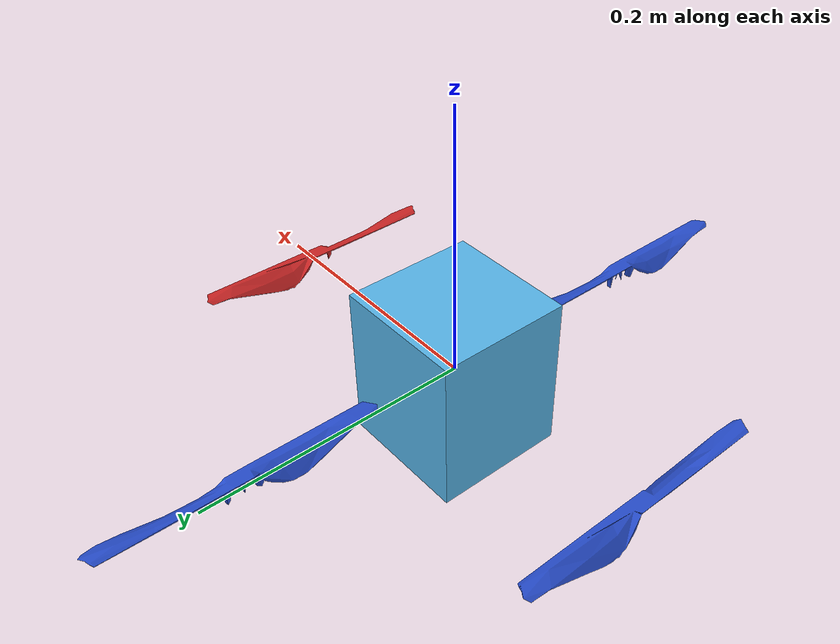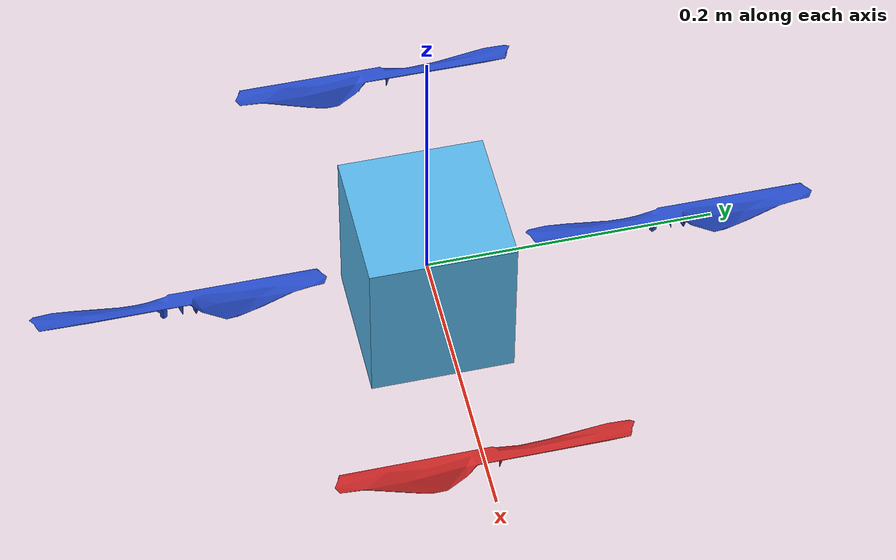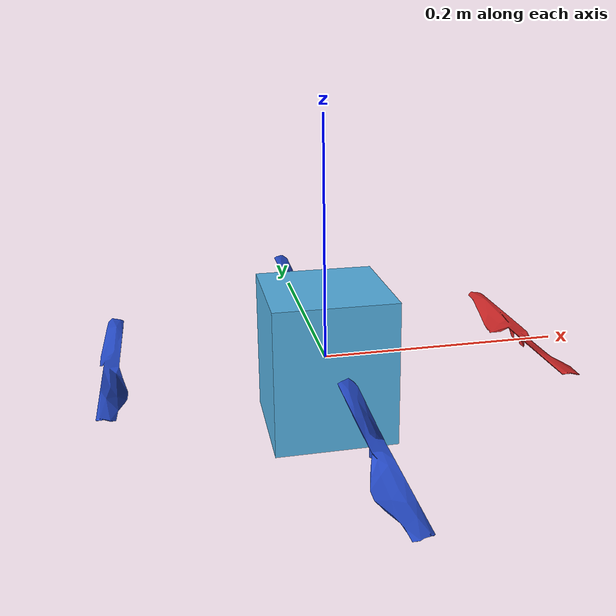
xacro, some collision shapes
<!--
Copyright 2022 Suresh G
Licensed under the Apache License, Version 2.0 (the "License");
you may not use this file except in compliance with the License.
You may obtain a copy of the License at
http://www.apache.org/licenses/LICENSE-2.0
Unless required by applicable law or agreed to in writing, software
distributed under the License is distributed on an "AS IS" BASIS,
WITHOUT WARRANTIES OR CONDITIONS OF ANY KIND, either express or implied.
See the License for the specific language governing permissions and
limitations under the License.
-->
<?xml version="1.0"?>
<?xml-model href="http://download.ros.org/schema/package_format3.xsd" schematypens="http://www.w3.org/2001/XMLSchema"?>
<robot name="hummingbird" xmlns:xacro="http://ros.org/wiki/xacro">
  <!--
    Arguments for the Asctec Hummingbird
  -->
  <xacro:arg name="namespace" default="hummingbird" />

  <!--
    Include the multirotor generic components
  -->
  <xacro:include filename="$(find mav_description)/urdf/mav_generic_components.xacro" />
  <!--
    Include the imu sensor
  -->
  <xacro:include filename="$(find mav_description)/urdf/imu.urdf.xacro" />

  <!--
    Instantiate the hummingbird mechanics
  -->
  <xacro:include filename="$(find mav_description)/urdf/hummingbird_base.urdf.xacro" />
  <!--
    Instantiate the hummingbird controller
  -->
  <xacro:multirotor_controller robot_namespace="$(arg namespace)" />
  <!--
    Instantiate the gt p3d interface
  -->
  <xacro:gt_p3d robot_namespace="$(arg namespace)" />
  <!--
    Instantiate the imu sensor
  -->
  <xacro:imu_sensor robot_namespace="$(arg namespace)" color="Black"
    parent="$(arg namespace)/base_link">
    <origin xyz="0 0 0" rpy="0 0 0" />
  </xacro:imu_sensor>
</robot>

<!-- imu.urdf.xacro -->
<?xml-model href="http://download.ros.org/schema/package_format3.xsd" schematypens="http://www.w3.org/2001/XMLSchema"?>
<robot name="imu" xmlns:xacro="http://ros.org/wiki/xacro">
  <!--
    Properties for the ADIS16448 IMU
  -->
  <xacro:property name="imu_mass" value="0.015" /> <!-- [kg] -->
  <xacro:property name="imu_length" value="0.03" />
  <xacro:property name="imu_width" value="0.03" />
  <xacro:property name="imu_height" value="0.01" />

  <!--
    Property for the imu's inertia
  -->
  <xacro:property name="imu_inertia">
    <inertia ixx="0.00001" ixy="0.0" ixz="0.0"
             iyy="0.00001" iyz="0.0"
             izz="0.00001" /> <!-- [kg m^2] ... -->
  </xacro:property>

  <!--
    Macro for the ADIS16448 IMU body
  -->
  <xacro:macro name="imu_sensor"
    params="robot_namespace parent color *origin">
    <link name="${robot_namespace}/imu_link">
      <inertial>
        <mass value="${imu_mass}" /> <!-- [kg] -->
        <origin xyz="0 0 0" />
        <xacro:insert_block name="imu_inertia" />
      </inertial>

      <visual>
        <origin xyz="0 0 0" rpy="0 0 0" />
        <geometry>
          <box size="${imu_length} ${imu_width} ${imu_height}" />
        </geometry>
      </visual>

      <collision>
        <origin xyz="0 0 0" rpy="0 0 0" />
        <geometry>
          <box size="${imu_length} ${imu_width} ${imu_height}" />
        </geometry>
      </collision>
    </link>

    <joint name="${robot_namespace}/imu_joint" type="fixed">
      <xacro:insert_block name="origin" />
      <parent link="${parent}" />
      <child link="${robot_namespace}/imu_link" />
    </joint>

    <gazebo reference="${robot_namespace}/imu_link">
      <material>Gazebo/${color}</material>
      <sensor name="imu_sensor" type="imu">
        <!-- Ensure sensor is always active -->
        <always_on>true</always_on>

        <!-- Update rate in Hz, defaults to 0.0, which means as fast as possible -->
        <update_rate>100</update_rate>

        <imu>
          <!-- Angular velocity noise model [rad/s] -->
          <angular_velocity>
            <x>
              <noise type="gaussian">
                <mean>0.0</mean>
                <stddev>2.0e-4</stddev>
              </noise>
            </x>
            <y>
              <noise type="gaussian">
                <mean>0.0</mean>
                <stddev>2.0e-4</stddev>
              </noise>
            </y>
            <z>
              <noise type="gaussian">
                <mean>0.0</mean>
                <stddev>2.0e-4</stddev>
              </noise>
            </z>
          </angular_velocity>

          <!-- Linear acceleration noise model [m/s^2] -->
          <linear_acceleration>
            <x>
              <noise type="gaussian">
                <mean>0.0</mean>
                <stddev>1.7e-2</stddev>
              </noise>
            </x>
            <y>
              <noise type="gaussian">
                <mean>0.0</mean>
                <stddev>1.7e-2</stddev>
              </noise>
            </y>
            <z>
              <noise type="gaussian">
                <mean>0.0</mean>
                <stddev>1.7e-2</stddev>
              </noise>
            </z>
          </linear_acceleration>
        </imu>
        <plugin name="${robot_namespace}_imu_sensor"
          filename="libgazebo_ros_imu_sensor.so">
          <ros>
            <!-- Add a namespace -->
            <namespace>${robot_namespace}</namespace>

            <!-- Remap the imu topic -->
            <remapping>~/out:=imu</remapping>
          </ros>

          <!-- To comply with REP 145 (world as orientation reference) -->
          <initial_orientation_as_reference>false</initial_orientation_as_reference>
        </plugin>
      </sensor>
    </gazebo>
  </xacro:macro>
</robot>

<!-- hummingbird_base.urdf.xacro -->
<?xml-model href="http://download.ros.org/schema/package_format3.xsd" schematypens="http://www.w3.org/2001/XMLSchema"?>
<robot name="hummingbird" xmlns:xacro="http://ros.org/wiki/xacro">
  <!--
    Properties for the Asctec Hummingbird
    reference Novel Dynamic Inversion Architectur Design for Quadrocopter Control by Wang et al.
  -->
  <xacro:property name="mav_namespace" value="$(arg namespace)" />
  <xacro:property name="mav_mesh_file" value="file://$(find mav_description)/meshes/hummingbird.dae" />
  <xacro:property name="body_mass" value="0.68" /> <!-- [kg] -->
  <xacro:property name="body_length" value="0.1" />
  <xacro:property name="body_width" value="0.1" />
  <xacro:property name="body_height" value="0.12" />
  <xacro:property name="rotor_mass" value="0.009" /> <!-- [kg] -->
  <xacro:property name="rotor_radius" value="0.1" />
  <xacro:property name="arm_length" value="0.17" />
  <xacro:property name="rotor_z_offset" value="0.01" />

  <!--
    Include the multirotor base xacro
  -->
  <xacro:include filename="$(find mav_description)/urdf/multirotor_base.urdf.xacro" />

  <!--
    Property for the body's inertia
  -->
  <xacro:property name="body_inertia">
    <inertia ixx="0.007" ixy="0.0" ixz="0.0"
             iyy="0.007" iyz="0.0"
             izz="0.012" /> <!-- [kg m^2] ... -->
  </xacro:property>

  <!--
    Property for the single rotor's inertia, assuming a cuboid shape
  -->
  <xacro:property name="rotor_inertia">
    <xacro:box_inertia x="${rotor_radius}" y="0.015" z="0.003"
      mass="${rotor_mass}" />
  </xacro:property>

  <!--
    Instantiate the multirotor_base macro
  -->
  <xacro:multirotor_base robot_namespace="${mav_namespace}" mass="${body_mass}"
    length="${body_length}" width="${body_width}" height="${body_height}"
    mesh_file="${mav_mesh_file}">
    <xacro:insert_block name="body_inertia" />
  </xacro:multirotor_base>

  <!--
    Instantiate the front vertical_rotor macro
  -->
  <xacro:vertical_rotor robot_namespace="${mav_namespace}" suffix="front"
    direction="cw" parent="${mav_namespace}/base_link" mass="${rotor_mass}"
    radius="${rotor_radius}" id="0" color="Red">
    <origin xyz="${arm_length} 0 ${rotor_z_offset}" rpy="0 0 0" />
    <xacro:insert_block name="rotor_inertia" />
  </xacro:vertical_rotor>

  <!--
    Instantiate the left vertical_rotor macro
  -->
  <xacro:vertical_rotor robot_namespace="${mav_namespace}" suffix="left"
    direction="ccw" parent="${mav_namespace}/base_link" mass="${rotor_mass}"
    radius="${rotor_radius}" id="1" color="Blue">
    <origin xyz="0 ${arm_length} ${rotor_z_offset}" rpy="0 0 0" />
    <xacro:insert_block name="rotor_inertia" />
  </xacro:vertical_rotor>

  <!--
    Instantiate the back vertical_rotor macro
  -->
  <xacro:vertical_rotor robot_namespace="${mav_namespace}" suffix="back"
    direction="cw" parent="${mav_namespace}/base_link" mass="${rotor_mass}"
    radius="${rotor_radius}" id="2" color="Blue">
    <origin xyz="-${arm_length} 0 ${rotor_z_offset}" rpy="0 0 0" />
    <xacro:insert_block name="rotor_inertia" />
  </xacro:vertical_rotor>

  <!--
    Instantiate the right vertical_rotor macro
  -->
  <xacro:vertical_rotor robot_namespace="${mav_namespace}" suffix="right"
    direction="ccw" parent="${mav_namespace}/base_link" mass="${rotor_mass}"
    radius="${rotor_radius}" id="3" color="Blue">
    <origin xyz="0 -${arm_length} ${rotor_z_offset}" rpy="0 0 0" />
    <xacro:insert_block name="rotor_inertia" />
  </xacro:vertical_rotor>
</robot>

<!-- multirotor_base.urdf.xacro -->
<?xml-model href="http://download.ros.org/schema/package_format3.xsd" schematypens="http://www.w3.org/2001/XMLSchema"?>
<robot xmlns:xacro="http://ros.org/wiki/xacro">
  <!--
    Macro for the inertia of a box (cuboid)
    reference https://en.wikipedia.org/wiki/List_of_moments_of_inertia
  -->
  <xacro:macro name="box_inertia" params="x y z mass">
    <inertia ixx="${(1.0/12.0) * mass * (y*y + z*z)}" ixy="0.0" ixz="0.0"
             iyy="${(1.0/12.0) * mass * (x*x + z*z)}" iyz="0.0"
             izz="${(1.0/12.0) * mass * (x*x + y*y)}" /> <!-- [kg m^2] ... -->
  </xacro:macro>

  <!--
    Macro for the inertial properties of a box (cuboid)
  -->
  <xacro:macro name="box_inertial" params="x y z mass *origin">
    <inertial>
      <mass value="${mass}" />
      <xacro:insert_block name="origin" />
      <xacro:box_inertia x="${x}" y="${y}" z="${z}" mass="${mass}" />
    </inertial>
  </xacro:macro>

  <!--
    Macro for the multirotor's body/base
  -->
  <xacro:macro name="multirotor_base"
    params="robot_namespace mass length width height mesh_file *inertia">

    <link name="${robot_namespace}/base_link">
    </link>

    <link name="${robot_namespace}/base_link_inertia">
      <inertial>
        <mass value="${mass}" /> <!-- [kg] -->
        <origin xyz="0 0 0" />
        <xacro:insert_block name="inertia" />
      </inertial>

      <visual>
        <origin xyz="0 0 0" rpy="0 0 0" />
        <geometry>
          <mesh filename="${mesh_file}" scale="1 1 1" />
        </geometry>
      </visual>

      <collision>
        <origin xyz="0 0 0" rpy="0 0 0" />
        <geometry>
          <box size="${length} ${width} ${height}" />
        </geometry>
      </collision>
    </link>

    <joint name="${robot_namespace}/base_joint" type="fixed">
      <origin xyz="0 0 0" rpy="0 0 0" />
      <parent link="${robot_namespace}/base_link" />
      <child link="${robot_namespace}/base_link_inertia" />
    </joint>

    <gazebo>
      <plugin name="${robot_namespace}_multirotor_model"
        filename="libgazebo_ros_multirotor_model.so">
        <ros>
          <!-- Add a namespace -->
          <namespace>${robot_namespace}</namespace>

          <!-- Remap the joint states topic -->
          <remapping>joint_states:=joint_states</remapping>
        </ros>

        <!-- Name of the link within this model whose actuators' joint state will be published -->
        <link_name>${robot_namespace}/base_link</link_name>

        <!-- Whether to publish the joint states -->
        <publish_states>true</publish_states>

        <!-- Update rate in Hz, defaults to 0.0, which means as fast as possible -->
        <update_rate>0.0</update_rate>
      </plugin>
    </gazebo>
  </xacro:macro>

  <!--
    Macro for the multirotor's vertical rotor
  -->
  <xacro:macro name="vertical_rotor"
    params="robot_namespace suffix direction parent mass radius id color *origin *inertia">
    <link name="${robot_namespace}/rotor_${id}_link">
      <inertial>
        <mass value="${mass}" /> <!-- [kg] -->
        <xacro:insert_block name="inertia" />
      </inertial>

      <visual>
        <geometry>
          <mesh filename="file://$(find mav_description)/meshes/propeller_${direction}.dae"
            scale="${radius} ${radius} ${radius}" />
        </geometry>
      </visual>

      <collision>
        <geometry>
          <cylinder length="0.005" radius="${radius}" />
        </geometry>
      </collision>
    </link>

    <joint name="${robot_namespace}/rotor_${id}_joint" type="continuous">
      <xacro:insert_block name="origin" />
      <axis xyz="0 0 1" />
      <parent link="${parent}" />
      <child link="${robot_namespace}/rotor_${id}_link" />
    </joint>

    <gazebo>
      <plugin name="${robot_namespace}_${suffix}_motor_model"
        filename="libgazebo_ros_motor_model.so">
        <ros>
          <!-- Add a namespace -->
          <namespace>${robot_namespace}</namespace>

          <!-- Remap the motor angular velocity topic -->
          <remapping>angular_velocity:=rotor_${id}/angular_velocity</remapping>

          <!-- Remap the motor control input topic -->
          <remapping>control_input:=rotor_${id}/control_input</remapping>
        </ros>

        <!-- Name of the motor joint within this model -->
        <joint_name>${robot_namespace}/rotor_${id}_joint</joint_name>

        <!-- Name of the motor link within this model -->
        <link_name>${robot_namespace}/rotor_${id}_link</link_name>

        <!-- motor rotation direction -->
        <rotation_direction>${direction}</rotation_direction>

        <!-- motor control input type -->
        <control_type>angular_speed</control_type>

        <!-- Whether to publish the angular velocities -->
        <publish_velocity>true</publish_velocity>

        <!-- Update rate in Hz, defaults to 0.0, which means as fast as possible -->
        <update_rate>0.0</update_rate>
      </plugin>
    </gazebo>

    <gazebo reference="${robot_namespace}/rotor_${id}_link">
      <material>Gazebo/${color}</material>
    </gazebo>
  </xacro:macro>
</robot>
